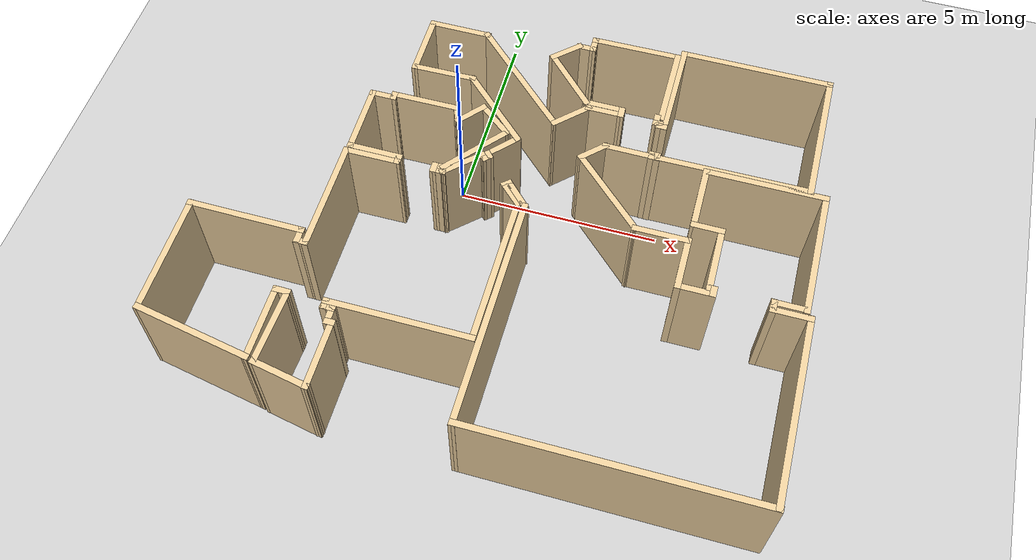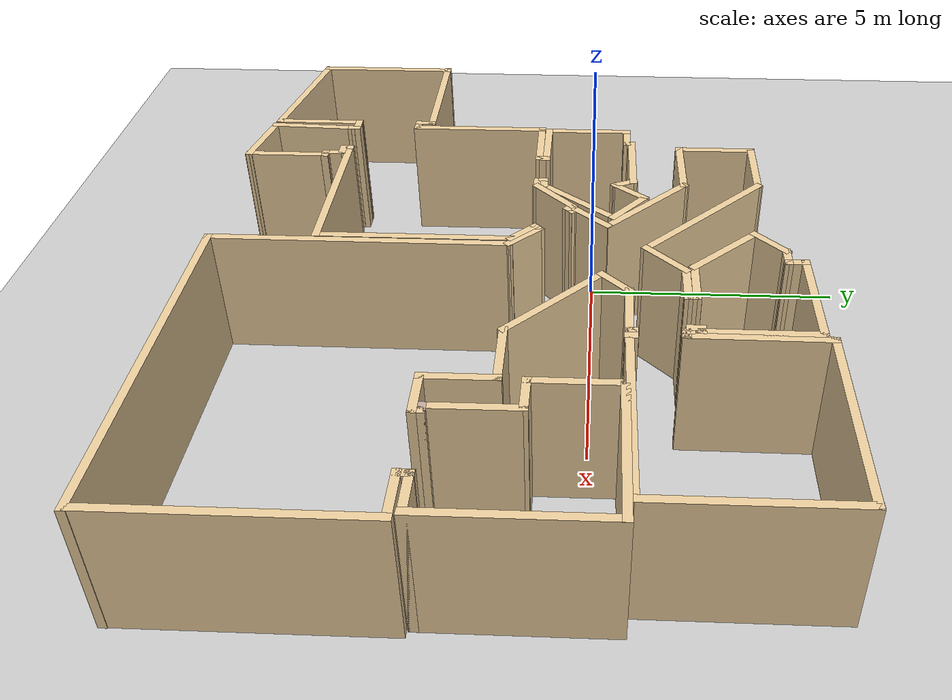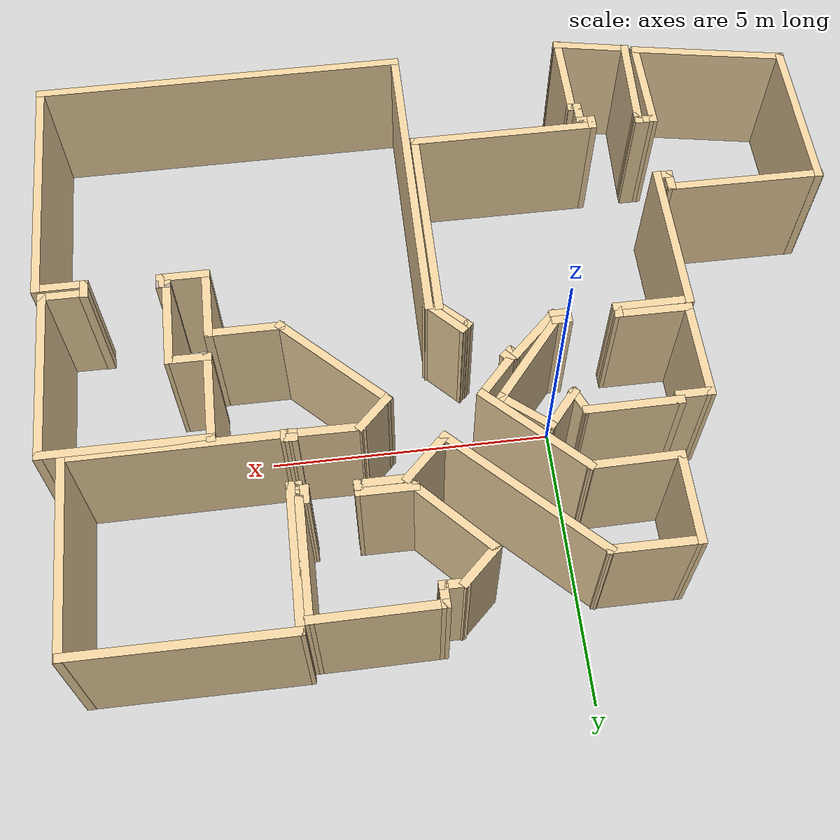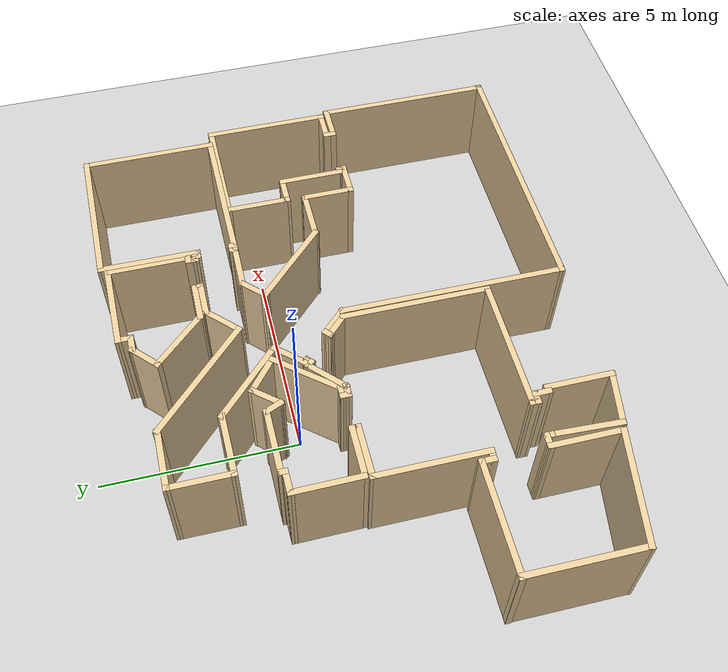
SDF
<sdf version="1.7">
 <world name="default">
  <model name="ground_plane">
   <static>1</static>
   <link name="link">
    <collision name="collision">
     <geometry><plane><normal>0 0 1</normal><size>100 100</size></plane></geometry>
     <surface>
      <contact><collide_bitmask>65535</collide_bitmask></contact>
      <friction><ode><mu>100</mu><mu2>50</mu2></ode></friction>
     </surface>
    </collision>
    <visual name="visual">
     <cast_shadows>0</cast_shadows>
     <geometry><plane><normal>0 0 1</normal><size>100 100</size></plane></geometry>
     <material>
      <script><uri>file://media/materials/scripts/gazebo.material</uri><name>Gazebo/Grey</name></script>
     </material>
    </visual>
   </link>
  </model>
  <model name="apartment">
   <pose>1.66788 -1.59386 0 0 -0 0</pose>
   <link name="Wall_100">
    <collision name="Wall_100_Collision">
     <geometry><box><size>2.95149 0.15 2.5</size></box></geometry>
     <pose>0 0 1.25 0 -0 0</pose>
    </collision>
    <visual name="Wall_100_Visual">
     <pose>0 0 1.25 0 -0 0</pose>
     <geometry><box><size>2.95149 0.15 2.5</size></box></geometry>
     <material>
      <script><uri>file://media/materials/scripts/gazebo.material</uri><name>Gazebo/Grey</name></script>
      <ambient>0.921569 0.807843 0.615686 1</ambient>
     </material>
     <meta><layer>0</layer></meta>
    </visual>
    <pose>5.57024 2.17108 0 0 -0 0</pose>
   </link>
   <link name="Wall_102">
    <collision name="Wall_102_Collision">
     <geometry><box><size>3.23176 0.15 2.5</size></box></geometry>
     <pose>0 0 1.25 0 -0 0</pose>
    </collision>
    <visual name="Wall_102_Visual">
     <pose>0 0 1.25 0 -0 0</pose>
     <geometry><box><size>3.23176 0.15 2.5</size></box></geometry>
     <material>
      <script><uri>file://media/materials/scripts/gazebo.material</uri><name>Gazebo/Grey</name></script>
      <ambient>0.921569 0.807843 0.615686 1</ambient>
     </material>
     <meta><layer>0</layer></meta>
    </visual>
    <pose>6.97321 0.632438 0 0 -0 1.5708</pose>
   </link>
   <link name="Wall_104">
    <collision name="Wall_104_Collision">
     <geometry><box><size>0.864692 0.15 2.5</size></box></geometry>
     <pose>0 0 1.25 0 -0 0</pose>
    </collision>
    <visual name="Wall_104_Visual">
     <pose>0 0 1.25 0 -0 0</pose>
     <geometry><box><size>0.864692 0.15 2.5</size></box></geometry>
     <material>
      <script><uri>file://media/materials/scripts/gazebo.material</uri><name>Gazebo/Grey</name></script>
      <ambient>0.921569 0.807843 0.615686 1</ambient>
     </material>
     <meta><layer>0</layer></meta>
    </visual>
    <pose>6.61587 -0.897002 0 0 -0 0</pose>
   </link>
   <link name="Wall_106">
    <collision name="Wall_106_Collision">
     <geometry><box><size>0.346141 0.15 2.5</size></box></geometry>
     <pose>0 0 1.25 0 -0 0</pose>
    </collision>
    <visual name="Wall_106_Visual">
     <pose>0 0 1.25 0 -0 0</pose>
     <geometry><box><size>0.346141 0.15 2.5</size></box></geometry>
     <material>
      <script><uri>file://media/materials/scripts/gazebo.material</uri><name>Gazebo/Grey</name></script>
      <ambient>0.921569 0.807843 0.615686 1</ambient>
     </material>
     <meta><layer>0</layer></meta>
    </visual>
    <pose>6.24608 -0.987123 0 0 -0 -1.5708</pose>
   </link>
   <link name="Wall_107">
    <collision name="Wall_107_Collision">
     <geometry><box><size>0.990144 0.15 2.5</size></box></geometry>
     <pose>0 0 1.25 0 -0 0</pose>
    </collision>
    <visual name="Wall_107_Visual">
     <pose>0 0 1.25 0 -0 0</pose>
     <geometry><box><size>0.990144 0.15 2.5</size></box></geometry>
     <material>
      <script><uri>file://media/materials/scripts/gazebo.material</uri><name>Gazebo/Grey</name></script>
      <ambient>0.921569 0.807843 0.615686 1</ambient>
     </material>
     <meta><layer>0</layer></meta>
    </visual>
    <pose>6.66615 -1.08519 0 0 -0 0</pose>
   </link>
   <link name="Wall_109">
    <collision name="Wall_109_Collision">
     <geometry><box><size>4.58478 0.15 2.5</size></box></geometry>
     <pose>0 0 1.25 0 -0 0</pose>
    </collision>
    <visual name="Wall_109_Visual">
     <pose>0 0 1.25 0 -0 0</pose>
     <geometry><box><size>4.58478 0.15 2.5</size></box></geometry>
     <material>
      <script><uri>file://media/materials/scripts/gazebo.material</uri><name>Gazebo/Grey</name></script>
      <ambient>0.921569 0.807843 0.615686 1</ambient>
     </material>
     <meta><layer>0</layer></meta>
    </visual>
    <pose>7.08665 -3.29873 0 0 -0 -1.5708</pose>
   </link>
   <link name="Wall_11">
    <collision name="Wall_11_Collision">
     <geometry><box><size>0.284286 0.15 2.5</size></box></geometry>
     <pose>0 0 1.25 0 -0 0</pose>
    </collision>
    <visual name="Wall_11_Visual">
     <pose>0 0 1.25 0 -0 0</pose>
     <geometry><box><size>0.284286 0.15 2.5</size></box></geometry>
     <material>
      <script><uri>file://media/materials/scripts/gazebo.material</uri><name>Gazebo/Grey</name></script>
      <ambient>0.921569 0.807843 0.615686 1</ambient>
     </material>
     <meta><layer>0</layer></meta>
    </visual>
    <pose>-3.18456 -3.61653 0 0 -0 -1.58337</pose>
   </link>
   <link name="Wall_12">
    <collision name="Wall_12_Collision">
     <geometry><box><size>0.354689 0.15 2.5</size></box></geometry>
     <pose>0 0 1.25 0 -0 0</pose>
    </collision>
    <visual name="Wall_12_Visual">
     <pose>0 0 1.25 0 -0 0</pose>
     <geometry><box><size>0.354689 0.15 2.5</size></box></geometry>
     <material>
      <script><uri>file://media/materials/scripts/gazebo.material</uri><name>Gazebo/Grey</name></script>
      <ambient>0.921569 0.807843 0.615686 1</ambient>
     </material>
     <meta><layer>0</layer></meta>
    </visual>
    <pose>-3.08306 -3.68462 0 0 -0 -0.013888</pose>
   </link>
   <link name="Wall_13">
    <collision name="Wall_13_Collision">
     <geometry><box><size>0.485442 0.15 2.5</size></box></geometry>
     <pose>0 0 1.25 0 -0 0</pose>
    </collision>
    <visual name="Wall_13_Visual">
     <pose>0 0 1.25 0 -0 0</pose>
     <geometry><box><size>0.485442 0.15 2.5</size></box></geometry>
     <material>
      <script><uri>file://media/materials/scripts/gazebo.material</uri><name>Gazebo/Grey</name></script>
      <ambient>0.921569 0.807843 0.615686 1</ambient>
     </material>
     <meta><layer>0</layer></meta>
    </visual>
    <pose>-2.97931 -3.85376 0 0 -0 -1.56232</pose>
   </link>
   <link name="Wall_14">
    <collision name="Wall_14_Collision">
     <geometry><box><size>0.260899 0.15 2.5</size></box></geometry>
     <pose>0 0 1.25 0 -0 0</pose>
    </collision>
    <visual name="Wall_14_Visual">
     <pose>0 0 1.25 0 -0 0</pose>
     <geometry><box><size>0.260899 0.15 2.5</size></box></geometry>
     <material>
      <script><uri>file://media/materials/scripts/gazebo.material</uri><name>Gazebo/Grey</name></script>
      <ambient>0.921569 0.807843 0.615686 1</ambient>
     </material>
     <meta><layer>0</layer></meta>
    </visual>
    <pose>-2.92246 -4.02147 0 0 -0 0</pose>
   </link>
   <link name="Wall_17">
    <collision name="Wall_17_Collision">
     <geometry><box><size>1.73664 0.15 2.5</size></box></geometry>
     <pose>0 0 1.25 0 -0 0</pose>
    </collision>
    <visual name="Wall_17_Visual">
     <pose>0 0 1.25 0 -0 0</pose>
     <geometry><box><size>1.73664 0.15 2.5</size></box></geometry>
     <material>
      <script><uri>file://media/materials/scripts/gazebo.material</uri><name>Gazebo/Grey</name></script>
      <ambient>0.921569 0.807843 0.615686 1</ambient>
     </material>
     <meta><layer>0</layer></meta>
    </visual>
    <pose>-2.86957 -4.8027 0 0 -0 -1.56807</pose>
   </link>
   <link name="Wall_18">
    <collision name="Wall_18_Collision">
     <geometry><box><size>1.45239 0.15 2.5</size></box></geometry>
     <pose>0 0 1.25 0 -0 0</pose>
    </collision>
    <visual name="Wall_18_Visual">
     <pose>0 0 1.25 0 -0 0</pose>
     <geometry><box><size>1.45239 0.15 2.5</size></box></geometry>
     <material>
      <script><uri>file://media/materials/scripts/gazebo.material</uri><name>Gazebo/Grey</name></script>
      <ambient>0.921569 0.807843 0.615686 1</ambient>
     </material>
     <meta><layer>0</layer></meta>
    </visual>
    <pose>-3.50725 -5.47497 0 0 -0 2.95461</pose>
   </link>
   <link name="Wall_19">
    <collision name="Wall_19_Collision">
     <geometry><box><size>1.8204 0.15 2.5</size></box></geometry>
     <pose>0 0 1.25 0 -0 0</pose>
    </collision>
    <visual name="Wall_19_Visual">
     <pose>0 0 1.25 0 -0 0</pose>
     <geometry><box><size>1.8204 0.15 2.5</size></box></geometry>
     <material>
      <script><uri>file://media/materials/scripts/gazebo.material</uri><name>Gazebo/Grey</name></script>
      <ambient>0.921569 0.807843 0.615686 1</ambient>
     </material>
     <meta><layer>0</layer></meta>
    </visual>
    <pose>-4.11035 -4.51952 0 0 -0 1.52678</pose>
   </link>
   <link name="Wall_2">
    <collision name="Wall_2_Collision">
     <geometry><box><size>6.92359 0.15 2.5</size></box></geometry>
     <pose>0 0 1.25 0 -0 0</pose>
    </collision>
    <visual name="Wall_2_Visual">
     <pose>0 0 1.25 0 -0 0</pose>
     <geometry><box><size>6.92359 0.15 2.5</size></box></geometry>
     <material>
      <script><uri>file://media/materials/scripts/gazebo.material</uri><name>Gazebo/Grey</name></script>
      <ambient>0.921569 0.807843 0.615686 1</ambient>
     </material>
     <meta><layer>0</layer></meta>
    </visual>
    <pose>3.71053 -5.53361 0 0 -0 -3.1399</pose>
   </link>
   <link name="Wall_20">
    <collision name="Wall_20_Collision">
     <geometry><box><size>0.266728 0.15 2.5</size></box></geometry>
     <pose>0 0 1.25 0 -0 0</pose>
    </collision>
    <visual name="Wall_20_Visual">
     <pose>0 0 1.25 0 -0 0</pose>
     <geometry><box><size>0.266728 0.15 2.5</size></box></geometry>
     <material>
      <script><uri>file://media/materials/scripts/gazebo.material</uri><name>Gazebo/Grey</name></script>
      <ambient>0.921569 0.807843 0.615686 1</ambient>
     </material>
     <meta><layer>0</layer></meta>
    </visual>
    <pose>-4.0736 -3.62677 0 0 -0 1.5708</pose>
   </link>
   <link name="Wall_21">
    <collision name="Wall_21_Collision">
     <geometry><box><size>0.418183 0.15 2.5</size></box></geometry>
     <pose>0 0 1.25 0 -0 0</pose>
    </collision>
    <visual name="Wall_21_Visual">
     <pose>0 0 1.25 0 -0 0</pose>
     <geometry><box><size>0.418183 0.15 2.5</size></box></geometry>
     <material>
      <script><uri>file://media/materials/scripts/gazebo.material</uri><name>Gazebo/Grey</name></script>
      <ambient>0.921569 0.807843 0.615686 1</ambient>
     </material>
     <meta><layer>0</layer></meta>
    </visual>
    <pose>-4.20763 -3.5684 0 0 -0 3.14159</pose>
   </link>
   <link name="Wall_22">
    <collision name="Wall_22_Collision">
     <geometry><box><size>1.87501 0.15 2.5</size></box></geometry>
     <pose>0 0 1.25 0 -0 0</pose>
    </collision>
    <visual name="Wall_22_Visual">
     <pose>0 0 1.25 0 -0 0</pose>
     <geometry><box><size>1.87501 0.15 2.5</size></box></geometry>
     <material>
      <script><uri>file://media/materials/scripts/gazebo.material</uri><name>Gazebo/Grey</name></script>
      <ambient>0.921569 0.807843 0.615686 1</ambient>
     </material>
     <meta><layer>0</layer></meta>
    </visual>
    <pose>-4.33949 -4.4309 0 0 -0 -1.56829</pose>
   </link>
   <link name="Wall_24">
    <collision name="Wall_24_Collision">
     <geometry><box><size>2.92937 0.15 2.5</size></box></geometry>
     <pose>0 0 1.25 0 -0 0</pose>
    </collision>
    <visual name="Wall_24_Visual">
     <pose>0 0 1.25 0 -0 0</pose>
     <geometry><box><size>2.92937 0.15 2.5</size></box></geometry>
     <material>
      <script><uri>file://media/materials/scripts/gazebo.material</uri><name>Gazebo/Grey</name></script>
      <ambient>0.921569 0.807843 0.615686 1</ambient>
     </material>
     <meta><layer>0</layer></meta>
    </visual>
    <pose>-5.71608 -5.04961 0 0 -0 2.96322</pose>
   </link>
   <link name="Wall_25">
    <collision name="Wall_25_Collision">
     <geometry><box><size>3.00362 0.15 2.5</size></box></geometry>
     <pose>0 0 1.25 0 -0 0</pose>
    </collision>
    <visual name="Wall_25_Visual">
     <pose>0 0 1.25 0 -0 0</pose>
     <geometry><box><size>3.00362 0.15 2.5</size></box></geometry>
     <material>
      <script><uri>file://media/materials/scripts/gazebo.material</uri><name>Gazebo/Grey</name></script>
      <ambient>0.921569 0.807843 0.615686 1</ambient>
     </material>
     <meta><layer>0</layer></meta>
    </visual>
    <pose>-7.08371 -3.37623 0 0 -0 1.5708</pose>
   </link>
   <link name="Wall_27">
    <collision name="Wall_27_Collision">
     <geometry><box><size>2.88666 0.15 2.5</size></box></geometry>
     <pose>0 0 1.25 0 -0 0</pose>
    </collision>
    <visual name="Wall_27_Visual">
     <pose>0 0 1.25 0 -0 0</pose>
     <geometry><box><size>2.88666 0.15 2.5</size></box></geometry>
     <material>
      <script><uri>file://media/materials/scripts/gazebo.material</uri><name>Gazebo/Grey</name></script>
      <ambient>0.921569 0.807843 0.615686 1</ambient>
     </material>
     <meta><layer>0</layer></meta>
    </visual>
    <pose>-5.72877 -1.95964 0 0 -0 -0.004739</pose>
   </link>
   <link name="Wall_28">
    <collision name="Wall_28_Collision">
     <geometry><box><size>0.431046 0.15 2.5</size></box></geometry>
     <pose>0 0 1.25 0 -0 0</pose>
    </collision>
    <visual name="Wall_28_Visual">
     <pose>0 0 1.25 0 -0 0</pose>
     <geometry><box><size>0.431046 0.15 2.5</size></box></geometry>
     <material>
      <script><uri>file://media/materials/scripts/gazebo.material</uri><name>Gazebo/Grey</name></script>
      <ambient>0.921569 0.807843 0.615686 1</ambient>
     </material>
     <meta><layer>0</layer></meta>
    </visual>
    <pose>-4.36045 -2.10663 0 0 -0 -1.5708</pose>
   </link>
   <link name="Wall_29">
    <collision name="Wall_29_Collision">
     <geometry><box><size>0.335901 0.15 2.5</size></box></geometry>
     <pose>0 0 1.25 0 -0 0</pose>
    </collision>
    <visual name="Wall_29_Visual">
     <pose>0 0 1.25 0 -0 0</pose>
     <geometry><box><size>0.335901 0.15 2.5</size></box></geometry>
     <material>
      <script><uri>file://media/materials/scripts/gazebo.material</uri><name>Gazebo/Grey</name></script>
      <ambient>0.921569 0.807843 0.615686 1</ambient>
     </material>
     <meta><layer>0</layer></meta>
    </visual>
    <pose>-4.2675 -2.24714 0 0 -0 0</pose>
   </link>
   <link name="Wall_3">
    <collision name="Wall_3_Collision">
     <geometry><box><size>5.75051 0.15 2.5</size></box></geometry>
     <pose>0 0 1.25 0 -0 0</pose>
    </collision>
    <visual name="Wall_3_Visual">
     <pose>0 0 1.25 0 -0 0</pose>
     <geometry><box><size>5.75051 0.15 2.5</size></box></geometry>
     <material>
      <script><uri>file://media/materials/scripts/gazebo.material</uri><name>Gazebo/Grey</name></script>
      <ambient>0.921569 0.807843 0.615686 1</ambient>
     </material>
     <meta><layer>0</layer></meta>
    </visual>
    <pose>0.329528 -2.73911 0 0 -0 1.56874</pose>
   </link>
   <link name="Wall_31">
    <collision name="Wall_31_Collision">
     <geometry><box><size>2.85962 0.15 2.5</size></box></geometry>
     <pose>0 0 1.25 0 -0 0</pose>
    </collision>
    <visual name="Wall_31_Visual">
     <pose>0 0 1.25 0 -0 0</pose>
     <geometry><box><size>2.85962 0.15 2.5</size></box></geometry>
     <material>
      <script><uri>file://media/materials/scripts/gazebo.material</uri><name>Gazebo/Grey</name></script>
      <ambient>0.921569 0.807843 0.615686 1</ambient>
     </material>
     <meta><layer>0</layer></meta>
    </visual>
    <pose>-4.15578 -0.899039 0 0 -0 1.57263</pose>
   </link>
   <link name="Wall_32">
    <collision name="Wall_32_Collision">
     <geometry><box><size>1.42278 0.15 2.5</size></box></geometry>
     <pose>0 0 1.25 0 -0 0</pose>
    </collision>
    <visual name="Wall_32_Visual">
     <pose>0 0 1.25 0 -0 0</pose>
     <geometry><box><size>1.42278 0.15 2.5</size></box></geometry>
     <material>
      <script><uri>file://media/materials/scripts/gazebo.material</uri><name>Gazebo/Grey</name></script>
      <ambient>0.921569 0.807843 0.615686 1</ambient>
     </material>
     <meta><layer>0</layer></meta>
    </visual>
    <pose>-3.52188 0.458253 0 0 -0 0.003906</pose>
   </link>
   <link name="Wall_33">
    <collision name="Wall_33_Collision">
     <geometry><box><size>0.294181 0.15 2.5</size></box></geometry>
     <pose>0 0 1.25 0 -0 0</pose>
    </collision>
    <visual name="Wall_33_Visual">
     <pose>0 0 1.25 0 -0 0</pose>
     <geometry><box><size>0.294181 0.15 2.5</size></box></geometry>
     <material>
      <script><uri>file://media/materials/scripts/gazebo.material</uri><name>Gazebo/Grey</name></script>
      <ambient>0.921569 0.807843 0.615686 1</ambient>
     </material>
     <meta><layer>0</layer></meta>
    </visual>
    <pose>-2.88549 0.53283 0 0 -0 1.5708</pose>
   </link>
   <link name="Wall_34">
    <collision name="Wall_34_Collision">
     <geometry><box><size>1.37315 0.15 2.5</size></box></geometry>
     <pose>0 0 1.25 0 -0 0</pose>
    </collision>
    <visual name="Wall_34_Visual">
     <pose>0 0 1.25 0 -0 0</pose>
     <geometry><box><size>1.37315 0.15 2.5</size></box></geometry>
     <material>
      <script><uri>file://media/materials/scripts/gazebo.material</uri><name>Gazebo/Grey</name></script>
      <ambient>0.921569 0.807843 0.615686 1</ambient>
     </material>
     <meta><layer>0</layer></meta>
    </visual>
    <pose>-3.49702 0.607406 0 0 -0 3.13753</pose>
   </link>
   <link name="Wall_36">
    <collision name="Wall_36_Collision">
     <geometry><box><size>1.80158 0.15 2.5</size></box></geometry>
     <pose>0 0 1.25 0 -0 0</pose>
    </collision>
    <visual name="Wall_36_Visual">
     <pose>0 0 1.25 0 -0 0</pose>
     <geometry><box><size>1.80158 0.15 2.5</size></box></geometry>
     <material>
      <script><uri>file://media/materials/scripts/gazebo.material</uri><name>Gazebo/Grey</name></script>
      <ambient>0.921569 0.807843 0.615686 1</ambient>
     </material>
     <meta><layer>0</layer></meta>
    </visual>
    <pose>-4.11695 1.45041 0 0 -0 1.58127</pose>
   </link>
   <link name="Wall_37">
    <collision name="Wall_37_Collision">
     <geometry><box><size>0.681781 0.15 2.5</size></box></geometry>
     <pose>0 0 1.25 0 -0 0</pose>
    </collision>
    <visual name="Wall_37_Visual">
     <pose>0 0 1.25 0 -0 0</pose>
     <geometry><box><size>0.681781 0.15 2.5</size></box></geometry>
     <material>
      <script><uri>file://media/materials/scripts/gazebo.material</uri><name>Gazebo/Grey</name></script>
      <ambient>0.921569 0.807843 0.615686 1</ambient>
     </material>
     <meta><layer>0</layer></meta>
    </visual>
    <pose>-3.85972 2.27831 0 0 -0 0.00813</pose>
   </link>
   <link name="Wall_38">
    <collision name="Wall_38_Collision">
     <geometry><box><size>0.245504 0.15 2.5</size></box></geometry>
     <pose>0 0 1.25 0 -0 0</pose>
    </collision>
    <visual name="Wall_38_Visual">
     <pose>0 0 1.25 0 -0 0</pose>
     <geometry><box><size>0.245504 0.15 2.5</size></box></geometry>
     <material>
      <script><uri>file://media/materials/scripts/gazebo.material</uri><name>Gazebo/Grey</name></script>
      <ambient>0.921569 0.807843 0.615686 1</ambient>
     </material>
     <meta><layer>0</layer></meta>
    </visual>
    <pose>-3.59383 2.32803 0 0 -0 1.5708</pose>
   </link>
   <link name="Wall_39">
    <collision name="Wall_39_Collision">
     <geometry><box><size>1.72802 0.15 2.5</size></box></geometry>
     <pose>0 0 1.25 0 -0 0</pose>
    </collision>
    <visual name="Wall_39_Visual">
     <pose>0 0 1.25 0 -0 0</pose>
     <geometry><box><size>1.72802 0.15 2.5</size></box></geometry>
     <material>
      <script><uri>file://media/materials/scripts/gazebo.material</uri><name>Gazebo/Grey</name></script>
      <ambient>0.921569 0.807843 0.615686 1</ambient>
     </material>
     <meta><layer>0</layer></meta>
    </visual>
    <pose>-2.80484 2.37991 0 0 -0 0.005479</pose>
   </link>
   <link name="Wall_4">
    <collision name="Wall_4_Collision">
     <geometry><box><size>0.890032 0.15 2.5</size></box></geometry>
     <pose>0 0 1.25 0 -0 0</pose>
    </collision>
    <visual name="Wall_4_Visual">
     <pose>0 0 1.25 0 -0 0</pose>
     <geometry><box><size>0.890032 0.15 2.5</size></box></geometry>
     <material>
      <script><uri>file://media/materials/scripts/gazebo.material</uri><name>Gazebo/Grey</name></script>
      <ambient>0.921569 0.807843 0.615686 1</ambient>
     </material>
     <meta><layer>0</layer></meta>
    </visual>
    <pose>0.076528 0.32564 0 0 -0 2.34521</pose>
   </link>
   <link name="Wall_40">
    <collision name="Wall_40_Collision">
     <geometry><box><size>0.537169 0.15 2.5</size></box></geometry>
     <pose>0 0 1.25 0 -0 0</pose>
    </collision>
    <visual name="Wall_40_Visual">
     <pose>0 0 1.25 0 -0 0</pose>
     <geometry><box><size>0.537169 0.15 2.5</size></box></geometry>
     <material>
      <script><uri>file://media/materials/scripts/gazebo.material</uri><name>Gazebo/Grey</name></script>
      <ambient>0.921569 0.807843 0.615686 1</ambient>
     </material>
     <meta><layer>0</layer></meta>
    </visual>
    <pose>-1.93802 2.20698 0 0 -0 -1.15711</pose>
   </link>
   <link name="Wall_41">
    <collision name="Wall_41_Collision">
     <geometry><box><size>0.882932 0.15 2.5</size></box></geometry>
     <pose>0 0 1.25 0 -0 0</pose>
    </collision>
    <visual name="Wall_41_Visual">
     <pose>0 0 1.25 0 -0 0</pose>
     <geometry><box><size>0.882932 0.15 2.5</size></box></geometry>
     <material>
      <script><uri>file://media/materials/scripts/gazebo.material</uri><name>Gazebo/Grey</name></script>
      <ambient>0.921569 0.807843 0.615686 1</ambient>
     </material>
     <meta><layer>0</layer></meta>
    </visual>
    <pose>-1.62458 2.31074 0 0 -0 0.873039</pose>
   </link>
   <link name="Wall_42">
    <collision name="Wall_42_Collision">
     <geometry><box><size>1.10544 0.15 2.5</size></box></geometry>
     <pose>0 0 1.25 0 -0 0</pose>
    </collision>
    <visual name="Wall_42_Visual">
     <pose>0 0 1.25 0 -0 0</pose>
     <geometry><box><size>1.10544 0.15 2.5</size></box></geometry>
     <material>
      <script><uri>file://media/materials/scripts/gazebo.material</uri><name>Gazebo/Grey</name></script>
      <ambient>0.921569 0.807843 0.615686 1</ambient>
     </material>
     <meta><layer>0</layer></meta>
    </visual>
    <pose>-1.01932 2.28912 0 0 -0 -0.686048</pose>
   </link>
   <link name="Wall_43">
    <collision name="Wall_43_Collision">
     <geometry><box><size>1.94016 0.15 2.5</size></box></geometry>
     <pose>0 0 1.25 0 -0 0</pose>
    </collision>
    <visual name="Wall_43_Visual">
     <pose>0 0 1.25 0 -0 0</pose>
     <geometry><box><size>1.94016 0.15 2.5</size></box></geometry>
     <material>
      <script><uri>file://media/materials/scripts/gazebo.material</uri><name>Gazebo/Grey</name></script>
      <ambient>0.921569 0.807843 0.615686 1</ambient>
     </material>
     <meta><layer>0</layer></meta>
    </visual>
    <pose>-1.22036 1.29693 0 0 -0 -2.26213</pose>
   </link>
   <link name="Wall_44">
    <collision name="Wall_44_Collision">
     <geometry><box><size>0.361885 0.15 2.5</size></box></geometry>
     <pose>0 0 1.25 0 -0 0</pose>
    </collision>
    <visual name="Wall_44_Visual">
     <pose>0 0 1.25 0 -0 0</pose>
     <geometry><box><size>0.361885 0.15 2.5</size></box></geometry>
     <material>
      <script><uri>file://media/materials/scripts/gazebo.material</uri><name>Gazebo/Grey</name></script>
      <ambient>0.921569 0.807843 0.615686 1</ambient>
     </material>
     <meta><layer>0</layer></meta>
    </visual>
    <pose>-1.89695 0.605206 0 0 -0 -3.12119</pose>
   </link>
   <link name="Wall_45">
    <collision name="Wall_45_Collision">
     <geometry><box><size>0.27977 0.15 2.5</size></box></geometry>
     <pose>0 0 1.25 0 -0 0</pose>
    </collision>
    <visual name="Wall_45_Visual">
     <pose>0 0 1.25 0 -0 0</pose>
     <geometry><box><size>0.27977 0.15 2.5</size></box></geometry>
     <material>
      <script><uri>file://media/materials/scripts/gazebo.material</uri><name>Gazebo/Grey</name></script>
      <ambient>0.921569 0.807843 0.615686 1</ambient>
     </material>
     <meta><layer>0</layer></meta>
    </visual>
    <pose>-2.00287 0.538195 0 0 -0 -1.5708</pose>
   </link>
   <link name="Wall_46">
    <collision name="Wall_46_Collision">
     <geometry><box><size>0.383497 0.15 2.5</size></box></geometry>
     <pose>0 0 1.25 0 -0 0</pose>
    </collision>
    <visual name="Wall_46_Visual">
     <pose>0 0 1.25 0 -0 0</pose>
     <geometry><box><size>0.383497 0.15 2.5</size></box></geometry>
     <material>
      <script><uri>file://media/materials/scripts/gazebo.material</uri><name>Gazebo/Grey</name></script>
      <ambient>0.921569 0.807843 0.615686 1</ambient>
     </material>
     <meta><layer>0</layer></meta>
    </visual>
    <pose>-1.88614 0.475507 0 0 -0 0.018516</pose>
   </link>
   <link name="Wall_47">
    <collision name="Wall_47_Collision">
     <geometry><box><size>1.19266 0.15 2.5</size></box></geometry>
     <pose>0 0 1.25 0 -0 0</pose>
    </collision>
    <visual name="Wall_47_Visual">
     <pose>0 0 1.25 0 -0 0</pose>
     <geometry><box><size>1.19266 0.15 2.5</size></box></geometry>
     <material>
      <script><uri>file://media/materials/scripts/gazebo.material</uri><name>Gazebo/Grey</name></script>
      <ambient>0.921569 0.807843 0.615686 1</ambient>
     </material>
     <meta><layer>0</layer></meta>
    </visual>
    <pose>-1.39329 0.838663 0 0 -0 0.764873</pose>
   </link>
   <link name="Wall_48">
    <collision name="Wall_48_Collision">
     <geometry><box><size>0.272281 0.15 2.5</size></box></geometry>
     <pose>0 0 1.25 0 -0 0</pose>
    </collision>
    <visual name="Wall_48_Visual">
     <pose>0 0 1.25 0 -0 0</pose>
     <geometry><box><size>0.272281 0.15 2.5</size></box></geometry>
     <material>
      <script><uri>file://media/materials/scripts/gazebo.material</uri><name>Gazebo/Grey</name></script>
      <ambient>0.921569 0.807843 0.615686 1</ambient>
     </material>
     <meta><layer>0</layer></meta>
    </visual>
    <pose>-0.973929 1.15642 0 0 -0 -0.785398</pose>
   </link>
   <link name="Wall_49">
    <collision name="Wall_49_Collision">
     <geometry><box><size>0.272433 0.15 2.5</size></box></geometry>
     <pose>0 0 1.25 0 -0 0</pose>
    </collision>
    <visual name="Wall_49_Visual">
     <pose>0 0 1.25 0 -0 0</pose>
     <geometry><box><size>0.272433 0.15 2.5</size></box></geometry>
     <material>
      <script><uri>file://media/materials/scripts/gazebo.material</uri><name>Gazebo/Grey</name></script>
      <ambient>0.921569 0.807843 0.615686 1</ambient>
     </material>
     <meta><layer>0</layer></meta>
    </visual>
    <pose>-0.885302 1.15426 0 0 -0 0.73544</pose>
   </link>
   <link name="Wall_5">
    <collision name="Wall_5_Collision">
     <geometry><box><size>0.272247 0.15 2.5</size></box></geometry>
     <pose>0 0 1.25 0 -0 0</pose>
    </collision>
    <visual name="Wall_5_Visual">
     <pose>0 0 1.25 0 -0 0</pose>
     <geometry><box><size>0.272247 0.15 2.5</size></box></geometry>
     <material>
      <script><uri>file://media/materials/scripts/gazebo.material</uri><name>Gazebo/Grey</name></script>
      <ambient>0.921569 0.807843 0.615686 1</ambient>
     </material>
     <meta><layer>0</layer></meta>
    </visual>
    <pose>-0.228222 0.54989 0 0 -0 -2.42276</pose>
   </link>
   <link name="Wall_50">
    <collision name="Wall_50_Collision">
     <geometry><box><size>0.248015 0.15 2.5</size></box></geometry>
     <pose>0 0 1.25 0 -0 0</pose>
    </collision>
    <visual name="Wall_50_Visual">
     <pose>0 0 1.25 0 -0 0</pose>
     <geometry><box><size>0.248015 0.15 2.5</size></box></geometry>
     <material>
      <script><uri>file://media/materials/scripts/gazebo.material</uri><name>Gazebo/Grey</name></script>
      <ambient>0.921569 0.807843 0.615686 1</ambient>
     </material>
     <meta><layer>0</layer></meta>
    </visual>
    <pose>-0.872332 1.23208 0 0 -0 2.29378</pose>
   </link>
   <link name="Wall_51">
    <collision name="Wall_51_Collision">
     <geometry><box><size>0.963994 0.15 2.5</size></box></geometry>
     <pose>0 0 1.25 0 -0 0</pose>
    </collision>
    <visual name="Wall_51_Visual">
     <pose>0 0 1.25 0 -0 0</pose>
     <geometry><box><size>0.963994 0.15 2.5</size></box></geometry>
     <material>
      <script><uri>file://media/materials/scripts/gazebo.material</uri><name>Gazebo/Grey</name></script>
      <ambient>0.921569 0.807843 0.615686 1</ambient>
     </material>
     <meta><layer>0</layer></meta>
    </visual>
    <pose>-0.630228 1.5693 0 0 -0 0.83048</pose>
   </link>
   <link name="Wall_53">
    <collision name="Wall_53_Collision">
     <geometry><box><size>2.31242 0.15 2.5</size></box></geometry>
     <pose>0 0 1.25 0 -0 0</pose>
    </collision>
    <visual name="Wall_53_Visual">
     <pose>0 0 1.25 0 -0 0</pose>
     <geometry><box><size>2.31242 0.15 2.5</size></box></geometry>
     <material>
      <script><uri>file://media/materials/scripts/gazebo.material</uri><name>Gazebo/Grey</name></script>
      <ambient>0.921569 0.807843 0.615686 1</ambient>
     </material>
     <meta><layer>0</layer></meta>
    </visual>
    <pose>-1.12607 2.63616 0 0 -0 2.37408</pose>
   </link>
   <link name="Wall_54">
    <collision name="Wall_54_Collision">
     <geometry><box><size>1.63669 0.15 2.5</size></box></geometry>
     <pose>0 0 1.25 0 -0 0</pose>
    </collision>
    <visual name="Wall_54_Visual">
     <pose>0 0 1.25 0 -0 0</pose>
     <geometry><box><size>1.63669 0.15 2.5</size></box></geometry>
     <material>
      <script><uri>file://media/materials/scripts/gazebo.material</uri><name>Gazebo/Grey</name></script>
      <ambient>0.921569 0.807843 0.615686 1</ambient>
     </material>
     <meta><layer>0</layer></meta>
    </visual>
    <pose>-2.64743 3.37695 0 0 -0 -3.12822</pose>
   </link>
   <link name="Wall_55">
    <collision name="Wall_55_Collision">
     <geometry><box><size>1.64651 0.15 2.5</size></box></geometry>
     <pose>0 0 1.25 0 -0 0</pose>
    </collision>
    <visual name="Wall_55_Visual">
     <pose>0 0 1.25 0 -0 0</pose>
     <geometry><box><size>1.64651 0.15 2.5</size></box></geometry>
     <material>
      <script><uri>file://media/materials/scripts/gazebo.material</uri><name>Gazebo/Grey</name></script>
      <ambient>0.921569 0.807843 0.615686 1</ambient>
     </material>
     <meta><layer>0</layer></meta>
    </visual>
    <pose>-3.39319 4.11526 0 0 -0 1.57412</pose>
   </link>
   <link name="Wall_56">
    <collision name="Wall_56_Collision">
     <geometry><box><size>1.59679 0.15 2.5</size></box></geometry>
     <pose>0 0 1.25 0 -0 0</pose>
    </collision>
    <visual name="Wall_56_Visual">
     <pose>0 0 1.25 0 -0 0</pose>
     <geometry><box><size>1.59679 0.15 2.5</size></box></geometry>
     <material>
      <script><uri>file://media/materials/scripts/gazebo.material</uri><name>Gazebo/Grey</name></script>
      <ambient>0.921569 0.807843 0.615686 1</ambient>
     </material>
     <meta><layer>0</layer></meta>
    </visual>
    <pose>-2.67229 4.86102 0 0 -0 -0.003436</pose>
   </link>
   <link name="Wall_57">
    <collision name="Wall_57_Collision">
     <geometry><box><size>3.39866 0.15 2.5</size></box></geometry>
     <pose>0 0 1.25 0 -0 0</pose>
    </collision>
    <visual name="Wall_57_Visual">
     <pose>0 0 1.25 0 -0 0</pose>
     <geometry><box><size>3.39866 0.15 2.5</size></box></geometry>
     <material>
      <script><uri>file://media/materials/scripts/gazebo.material</uri><name>Gazebo/Grey</name></script>
      <ambient>0.921569 0.807843 0.615686 1</ambient>
     </material>
     <meta><layer>0</layer></meta>
    </visual>
    <pose>-0.785501 3.72497 0 0 -0 -0.772412</pose>
   </link>
   <link name="Wall_58">
    <collision name="Wall_58_Collision">
     <geometry><box><size>1.11679 0.15 2.5</size></box></geometry>
     <pose>0 0 1.25 0 -0 0</pose>
    </collision>
    <visual name="Wall_58_Visual">
     <pose>0 0 1.25 0 -0 0</pose>
     <geometry><box><size>1.11679 0.15 2.5</size></box></geometry>
     <material>
      <script><uri>file://media/materials/scripts/gazebo.material</uri><name>Gazebo/Grey</name></script>
      <ambient>0.921569 0.807843 0.615686 1</ambient>
     </material>
     <meta><layer>0</layer></meta>
    </visual>
    <pose>0.720944 2.93197 0 0 -0 0.781762</pose>
   </link>
   <link name="Wall_59">
    <collision name="Wall_59_Collision">
     <geometry><box><size>0.950593 0.15 2.5</size></box></geometry>
     <pose>0 0 1.25 0 -0 0</pose>
    </collision>
    <visual name="Wall_59_Visual">
     <pose>0 0 1.25 0 -0 0</pose>
     <geometry><box><size>0.950593 0.15 2.5</size></box></geometry>
     <material>
      <script><uri>file://media/materials/scripts/gazebo.material</uri><name>Gazebo/Grey</name></script>
      <ambient>0.921569 0.807843 0.615686 1</ambient>
     </material>
     <meta><layer>0</layer></meta>
    </visual>
    <pose>1.46422 3.27254 0 0 -0 0</pose>
   </link>
   <link name="Wall_6">
    <collision name="Wall_6_Collision">
     <geometry><box><size>0.759934 0.15 2.5</size></box></geometry>
     <pose>0 0 1.25 0 -0 0</pose>
    </collision>
    <visual name="Wall_6_Visual">
     <pose>0 0 1.25 0 -0 0</pose>
     <geometry><box><size>0.759934 0.15 2.5</size></box></geometry>
     <material>
      <script><uri>file://media/materials/scripts/gazebo.material</uri><name>Gazebo/Grey</name></script>
      <ambient>0.921569 0.807843 0.615686 1</ambient>
     </material>
     <meta><layer>0</layer></meta>
    </visual>
    <pose>-0.055722 0.29689 0 0 -0 -0.772066</pose>
   </link>
   <link name="Wall_60">
    <collision name="Wall_60_Collision">
     <geometry><box><size>0.299153 0.15 2.5</size></box></geometry>
     <pose>0 0 1.25 0 -0 0</pose>
    </collision>
    <visual name="Wall_60_Visual">
     <pose>0 0 1.25 0 -0 0</pose>
     <geometry><box><size>0.299153 0.15 2.5</size></box></geometry>
     <material>
      <script><uri>file://media/materials/scripts/gazebo.material</uri><name>Gazebo/Grey</name></script>
      <ambient>0.921569 0.807843 0.615686 1</ambient>
     </material>
     <meta><layer>0</layer></meta>
    </visual>
    <pose>1.86197 3.34712 0 0 -0 1.60412</pose>
   </link>
   <link name="Wall_61">
    <collision name="Wall_61_Collision">
     <geometry><box><size>1.0499 0.15 2.5</size></box></geometry>
     <pose>0 0 1.25 0 -0 0</pose>
    </collision>
    <visual name="Wall_61_Visual">
     <pose>0 0 1.25 0 -0 0</pose>
     <geometry><box><size>1.0499 0.15 2.5</size></box></geometry>
     <material>
      <script><uri>file://media/materials/scripts/gazebo.material</uri><name>Gazebo/Grey</name></script>
      <ambient>0.921569 0.807843 0.615686 1</ambient>
     </material>
     <meta><layer>0</layer></meta>
    </visual>
    <pose>1.40953 3.42418 0 0 -0 3.13607</pose>
   </link>
   <link name="Wall_62">
    <collision name="Wall_62_Collision">
     <geometry><box><size>1.78177 0.15 2.5</size></box></geometry>
     <pose>0 0 1.25 0 -0 0</pose>
    </collision>
    <visual name="Wall_62_Visual">
     <pose>0 0 1.25 0 -0 0</pose>
     <geometry><box><size>1.78177 0.15 2.5</size></box></geometry>
     <material>
      <script><uri>file://media/materials/scripts/gazebo.material</uri><name>Gazebo/Grey</name></script>
      <ambient>0.921569 0.807843 0.615686 1</ambient>
     </material>
     <meta><layer>0</layer></meta>
    </visual>
    <pose>0.39778 4.01831 0 0 -0 2.33034</pose>
   </link>
   <link name="Wall_64">
    <collision name="Wall_64_Collision">
     <geometry><box><size>0.902628 0.15 2.5</size></box></geometry>
     <pose>0 0 1.25 0 -0 0</pose>
    </collision>
    <visual name="Wall_64_Visual">
     <pose>0 0 1.25 0 -0 0</pose>
     <geometry><box><size>0.902628 0.15 2.5</size></box></geometry>
     <material>
      <script><uri>file://media/materials/scripts/gazebo.material</uri><name>Gazebo/Grey</name></script>
      <ambient>0.921569 0.807843 0.615686 1</ambient>
     </material>
     <meta><layer>0</layer></meta>
    </visual>
    <pose>0.104445 4.87345 0 0 -0 0.757368</pose>
   </link>
   <link name="Wall_65">
    <collision name="Wall_65_Collision">
     <geometry><box><size>0.498024 0.15 2.5</size></box></geometry>
     <pose>0 0 1.25 0 -0 0</pose>
    </collision>
    <visual name="Wall_65_Visual">
     <pose>0 0 1.25 0 -0 0</pose>
     <geometry><box><size>0.498024 0.15 2.5</size></box></geometry>
     <material>
      <script><uri>file://media/materials/scripts/gazebo.material</uri><name>Gazebo/Grey</name></script>
      <ambient>0.921569 0.807843 0.615686 1</ambient>
     </material>
     <meta><layer>0</layer></meta>
    </visual>
    <pose>0.551904 5.13198 0 0 -0 0</pose>
   </link>
   <link name="Wall_66">
    <collision name="Wall_66_Collision">
     <geometry><box><size>0.453319 0.15 2.5</size></box></geometry>
     <pose>0 0 1.25 0 -0 0</pose>
    </collision>
    <visual name="Wall_66_Visual">
     <pose>0 0 1.25 0 -0 0</pose>
     <geometry><box><size>0.453319 0.15 2.5</size></box></geometry>
     <material>
      <script><uri>file://media/materials/scripts/gazebo.material</uri><name>Gazebo/Grey</name></script>
      <ambient>0.921569 0.807843 0.615686 1</ambient>
     </material>
     <meta><layer>0</layer></meta>
    </visual>
    <pose>0.72343 5.28362 0 0 -0 1.58719</pose>
   </link>
   <link name="Wall_67">
    <collision name="Wall_67_Collision">
     <geometry><box><size>2.25311 0.15 2.5</size></box></geometry>
     <pose>0 0 1.25 0 -0 0</pose>
    </collision>
    <visual name="Wall_67_Visual">
     <pose>0 0 1.25 0 -0 0</pose>
     <geometry><box><size>2.25311 0.15 2.5</size></box></geometry>
     <material>
      <script><uri>file://media/materials/scripts/gazebo.material</uri><name>Gazebo/Grey</name></script>
      <ambient>0.921569 0.807843 0.615686 1</ambient>
     </material>
     <meta><layer>0</layer></meta>
    </visual>
    <pose>1.77247 5.44272 0 0 -0 0.007092</pose>
   </link>
   <link name="Wall_68">
    <collision name="Wall_68_Collision">
     <geometry><box><size>2.15362 0.15 2.5</size></box></geometry>
     <pose>0 0 1.25 0 -0 0</pose>
    </collision>
    <visual name="Wall_68_Visual">
     <pose>0 0 1.25 0 -0 0</pose>
     <geometry><box><size>2.15362 0.15 2.5</size></box></geometry>
     <material>
      <script><uri>file://media/materials/scripts/gazebo.material</uri><name>Gazebo/Grey</name></script>
      <ambient>0.921569 0.807843 0.615686 1</ambient>
     </material>
     <meta><layer>0</layer></meta>
    </visual>
    <pose>2.824 4.44836 0 0 -0 -1.5708</pose>
   </link>
   <link name="Wall_69">
    <collision name="Wall_69_Collision">
     <geometry><box><size>0.23452 0.15 2.5</size></box></geometry>
     <pose>0 0 1.25 0 -0 0</pose>
    </collision>
    <visual name="Wall_69_Visual">
     <pose>0 0 1.25 0 -0 0</pose>
     <geometry><box><size>0.23452 0.15 2.5</size></box></geometry>
     <material>
      <script><uri>file://media/materials/scripts/gazebo.material</uri><name>Gazebo/Grey</name></script>
      <ambient>0.921569 0.807843 0.615686 1</ambient>
     </material>
     <meta><layer>0</layer></meta>
    </visual>
    <pose>2.78174 3.44655 0 0 -0 3.14159</pose>
   </link>
   <link name="Wall_7">
    <collision name="Wall_7_Collision">
     <geometry><box><size>3.784 0.15 2.5</size></box></geometry>
     <pose>0 0 1.25 0 -0 0</pose>
    </collision>
    <visual name="Wall_7_Visual">
     <pose>0 0 1.25 0 -0 0</pose>
     <geometry><box><size>3.784 0.15 2.5</size></box></geometry>
     <material>
      <script><uri>file://media/materials/scripts/gazebo.material</uri><name>Gazebo/Grey</name></script>
      <ambient>0.921569 0.807843 0.615686 1</ambient>
     </material>
     <meta><layer>0</layer></meta>
    </visual>
    <pose>0.162778 -1.73286 0 0 -0 -1.5708</pose>
   </link>
   <link name="Wall_71">
    <collision name="Wall_71_Collision">
     <geometry><box><size>0.334904 0.15 2.5</size></box></geometry>
     <pose>0 0 1.25 0 -0 0</pose>
    </collision>
    <visual name="Wall_71_Visual">
     <pose>0 0 1.25 0 -0 0</pose>
     <geometry><box><size>0.334904 0.15 2.5</size></box></geometry>
     <material>
      <script><uri>file://media/materials/scripts/gazebo.material</uri><name>Gazebo/Grey</name></script>
      <ambient>0.921569 0.807843 0.615686 1</ambient>
     </material>
     <meta><layer>0</layer></meta>
    </visual>
    <pose>2.72936 3.35367 0 0 -0 -1.58814</pose>
   </link>
   <link name="Wall_72">
    <collision name="Wall_72_Collision">
     <geometry><box><size>0.251572 0.15 2.5</size></box></geometry>
     <pose>0 0 1.25 0 -0 0</pose>
    </collision>
    <visual name="Wall_72_Visual">
     <pose>0 0 1.25 0 -0 0</pose>
     <geometry><box><size>0.251572 0.15 2.5</size></box></geometry>
     <material>
      <script><uri>file://media/materials/scripts/gazebo.material</uri><name>Gazebo/Grey</name></script>
      <ambient>0.921569 0.807843 0.615686 1</ambient>
     </material>
     <meta><layer>0</layer></meta>
    </visual>
    <pose>2.77852 3.26123 0 0 -0 0</pose>
   </link>
   <link name="Wall_73">
    <collision name="Wall_73_Collision">
     <geometry><box><size>0.222676 0.15 2.5</size></box></geometry>
     <pose>0 0 1.25 0 -0 0</pose>
    </collision>
    <visual name="Wall_73_Visual">
     <pose>0 0 1.25 0 -0 0</pose>
     <geometry><box><size>0.222676 0.15 2.5</size></box></geometry>
     <material>
      <script><uri>file://media/materials/scripts/gazebo.material</uri><name>Gazebo/Grey</name></script>
      <ambient>0.921569 0.807843 0.615686 1</ambient>
     </material>
     <meta><layer>0</layer></meta>
    </visual>
    <pose>2.82928 3.2249 0 0 -0 -1.5708</pose>
   </link>
   <link name="Wall_74">
    <collision name="Wall_74_Collision">
     <geometry><box><size>0.264345 0.15 2.5</size></box></geometry>
     <pose>0 0 1.25 0 -0 0</pose>
    </collision>
    <visual name="Wall_74_Visual">
     <pose>0 0 1.25 0 -0 0</pose>
     <geometry><box><size>0.264345 0.15 2.5</size></box></geometry>
     <material>
      <script><uri>file://media/materials/scripts/gazebo.material</uri><name>Gazebo/Grey</name></script>
      <ambient>0.921569 0.807843 0.615686 1</ambient>
     </material>
     <meta><layer>0</layer></meta>
    </visual>
    <pose>2.88645 3.18857 0 0 -0 0</pose>
   </link>
   <link name="Wall_76">
    <collision name="Wall_76_Collision">
     <geometry><box><size>2.57539 0.15 2.5</size></box></geometry>
     <pose>0 0 1.25 0 -0 0</pose>
    </collision>
    <visual name="Wall_76_Visual">
     <pose>0 0 1.25 0 -0 0</pose>
     <geometry><box><size>2.57539 0.15 2.5</size></box></geometry>
     <material>
      <script><uri>file://media/materials/scripts/gazebo.material</uri><name>Gazebo/Grey</name></script>
      <ambient>0.921569 0.807843 0.615686 1</ambient>
     </material>
     <meta><layer>0</layer></meta>
    </visual>
    <pose>2.95481 4.39558 0 0 -0 1.56545</pose>
   </link>
   <link name="Wall_77">
    <collision name="Wall_77_Collision">
     <geometry><box><size>3.79022 0.15 2.5</size></box></geometry>
     <pose>0 0 1.25 0 -0 0</pose>
    </collision>
    <visual name="Wall_77_Visual">
     <pose>0 0 1.25 0 -0 0</pose>
     <geometry><box><size>3.79022 0.15 2.5</size></box></geometry>
     <material>
      <script><uri>file://media/materials/scripts/gazebo.material</uri><name>Gazebo/Grey</name></script>
      <ambient>0.921569 0.807843 0.615686 1</ambient>
     </material>
     <meta><layer>0</layer></meta>
    </visual>
    <pose>4.7814 5.60393 0 0 -0 -0.002375</pose>
   </link>
   <link name="Wall_79">
    <collision name="Wall_79_Collision">
     <geometry><box><size>3.48904 0.15 2.5</size></box></geometry>
     <pose>0 0 1.25 0 -0 0</pose>
    </collision>
    <visual name="Wall_79_Visual">
     <pose>0 0 1.25 0 -0 0</pose>
     <geometry><box><size>3.48904 0.15 2.5</size></box></geometry>
     <material>
      <script><uri>file://media/materials/scripts/gazebo.material</uri><name>Gazebo/Grey</name></script>
      <ambient>0.921569 0.807843 0.615686 1</ambient>
     </material>
     <meta><layer>0</layer></meta>
    </visual>
    <pose>6.60282 3.93416 0 0 -0 -1.5708</pose>
   </link>
   <link name="Wall_8">
    <collision name="Wall_8_Collision">
     <geometry><box><size>3.49652 0.15 2.5</size></box></geometry>
     <pose>0 0 1.25 0 -0 0</pose>
    </collision>
    <visual name="Wall_8_Visual">
     <pose>0 0 1.25 0 -0 0</pose>
     <geometry><box><size>3.49652 0.15 2.5</size></box></geometry>
     <material>
      <script><uri>file://media/materials/scripts/gazebo.material</uri><name>Gazebo/Grey</name></script>
      <ambient>0.921569 0.807843 0.615686 1</ambient>
     </material>
     <meta><layer>0</layer></meta>
    </visual>
    <pose>-1.51047 -3.54986 0 0 -0 3.14159</pose>
   </link>
   <link name="Wall_80">
    <collision name="Wall_80_Collision">
     <geometry><box><size>3.78639 0.15 2.5</size></box></geometry>
     <pose>0 0 1.25 0 -0 0</pose>
    </collision>
    <visual name="Wall_80_Visual">
     <pose>0 0 1.25 0 -0 0</pose>
     <geometry><box><size>3.78639 0.15 2.5</size></box></geometry>
     <material>
      <script><uri>file://media/materials/scripts/gazebo.material</uri><name>Gazebo/Grey</name></script>
      <ambient>0.921569 0.807843 0.615686 1</ambient>
     </material>
     <meta><layer>0</layer></meta>
    </visual>
    <pose>4.78464 2.25607 0 0 -0 -3.13688</pose>
   </link>
   <link name="Wall_82">
    <collision name="Wall_82_Collision">
     <geometry><box><size>0.232359 0.15 2.5</size></box></geometry>
     <pose>0 0 1.25 0 -0 0</pose>
    </collision>
    <visual name="Wall_82_Visual">
     <pose>0 0 1.25 0 -0 0</pose>
     <geometry><box><size>0.232359 0.15 2.5</size></box></geometry>
     <material>
      <script><uri>file://media/materials/scripts/gazebo.material</uri><name>Gazebo/Grey</name></script>
      <ambient>0.921569 0.807843 0.615686 1</ambient>
     </material>
     <meta><layer>0</layer></meta>
    </visual>
    <pose>2.96856 2.27594 0 0 -0 1.57721</pose>
   </link>
   <link name="Wall_83">
    <collision name="Wall_83_Collision">
     <geometry><box><size>0.278586 0.15 2.5</size></box></geometry>
     <pose>0 0 1.25 0 -0 0</pose>
    </collision>
    <visual name="Wall_83_Visual">
     <pose>0 0 1.25 0 -0 0</pose>
     <geometry><box><size>0.278586 0.15 2.5</size></box></geometry>
     <material>
      <script><uri>file://media/materials/scripts/gazebo.material</uri><name>Gazebo/Grey</name></script>
      <ambient>0.921569 0.807843 0.615686 1</ambient>
     </material>
     <meta><layer>0</layer></meta>
    </visual>
    <pose>2.90374 2.31845 0 0 -0 3.12513</pose>
   </link>
   <link name="Wall_84">
    <collision name="Wall_84_Collision">
     <geometry><box><size>0.230271 0.15 2.5</size></box></geometry>
     <pose>0 0 1.25 0 -0 0</pose>
    </collision>
    <visual name="Wall_84_Visual">
     <pose>0 0 1.25 0 -0 0</pose>
     <geometry><box><size>0.230271 0.15 2.5</size></box></geometry>
     <material>
      <script><uri>file://media/materials/scripts/gazebo.material</uri><name>Gazebo/Grey</name></script>
      <ambient>0.921569 0.807843 0.615686 1</ambient>
     </material>
     <meta><layer>0</layer></meta>
    </visual>
    <pose>2.83892 2.27913 0 0 -0 -1.57737</pose>
   </link>
   <link name="Wall_86">
    <collision name="Wall_86_Collision">
     <geometry><box><size>1.26129 0.15 2.5</size></box></geometry>
     <pose>0 0 1.25 0 -0 0</pose>
    </collision>
    <visual name="Wall_86_Visual">
     <pose>0 0 1.25 0 -0 0</pose>
     <geometry><box><size>1.26129 0.15 2.5</size></box></geometry>
     <material>
      <script><uri>file://media/materials/scripts/gazebo.material</uri><name>Gazebo/Grey</name></script>
      <ambient>0.921569 0.807843 0.615686 1</ambient>
     </material>
     <meta><layer>0</layer></meta>
    </visual>
    <pose>2.27561 2.2523 0 0 -0 3.13386</pose>
   </link>
   <link name="Wall_87">
    <collision name="Wall_87_Collision">
     <geometry><box><size>0.823308 0.15 2.5</size></box></geometry>
     <pose>0 0 1.25 0 -0 0</pose>
    </collision>
    <visual name="Wall_87_Visual">
     <pose>0 0 1.25 0 -0 0</pose>
     <geometry><box><size>0.823308 0.15 2.5</size></box></geometry>
     <material>
      <script><uri>file://media/materials/scripts/gazebo.material</uri><name>Gazebo/Grey</name></script>
      <ambient>0.921569 0.807843 0.615686 1</ambient>
     </material>
     <meta><layer>0</layer></meta>
    </visual>
    <pose>1.48139 2.01909 0 0 -0 -2.35845</pose>
   </link>
   <link name="Wall_89">
    <collision name="Wall_89_Collision">
     <geometry><box><size>2.46702 0.15 2.5</size></box></geometry>
     <pose>0 0 1.25 0 -0 0</pose>
    </collision>
    <visual name="Wall_89_Visual">
     <pose>0 0 1.25 0 -0 0</pose>
     <geometry><box><size>2.46702 0.15 2.5</size></box></geometry>
     <material>
      <script><uri>file://media/materials/scripts/gazebo.material</uri><name>Gazebo/Grey</name></script>
      <ambient>0.921569 0.807843 0.615686 1</ambient>
     </material>
     <meta><layer>0</layer></meta>
    </visual>
    <pose>2.07279 0.973327 0 0 -0 -0.772129</pose>
   </link>
   <link name="Wall_90">
    <collision name="Wall_90_Collision">
     <geometry><box><size>1.36919 0.15 2.5</size></box></geometry>
     <pose>0 0 1.25 0 -0 0</pose>
    </collision>
    <visual name="Wall_90_Visual">
     <pose>0 0 1.25 0 -0 0</pose>
     <geometry><box><size>1.36919 0.15 2.5</size></box></geometry>
     <material>
      <script><uri>file://media/materials/scripts/gazebo.material</uri><name>Gazebo/Grey</name></script>
      <ambient>0.921569 0.807843 0.615686 1</ambient>
     </material>
     <meta><layer>0</layer></meta>
    </visual>
    <pose>3.51236 0.165078 0 0 -0 0</pose>
   </link>
   <link name="Wall_92">
    <collision name="Wall_92_Collision">
     <geometry><box><size>1.37784 0.15 2.5</size></box></geometry>
     <pose>0 0 1.25 0 -0 0</pose>
    </collision>
    <visual name="Wall_92_Visual">
     <pose>0 0 1.25 0 -0 0</pose>
     <geometry><box><size>1.37784 0.15 2.5</size></box></geometry>
     <material>
      <script><uri>file://media/materials/scripts/gazebo.material</uri><name>Gazebo/Grey</name></script>
      <ambient>0.921569 0.807843 0.615686 1</ambient>
     </material>
     <meta><layer>0</layer></meta>
    </visual>
    <pose>4.13492 -0.444504 0 0 -0 -1.5708</pose>
   </link>
   <link name="Wall_93">
    <collision name="Wall_93_Collision">
     <geometry><box><size>0.941207 0.15 2.5</size></box></geometry>
     <pose>0 0 1.25 0 -0 0</pose>
    </collision>
    <visual name="Wall_93_Visual">
     <pose>0 0 1.25 0 -0 0</pose>
     <geometry><box><size>0.941207 0.15 2.5</size></box></geometry>
     <material>
      <script><uri>file://media/materials/scripts/gazebo.material</uri><name>Gazebo/Grey</name></script>
      <ambient>0.921569 0.807843 0.615686 1</ambient>
     </material>
     <meta><layer>0</layer></meta>
    </visual>
    <pose>4.5305 -1.05841 0 0 -0 0</pose>
   </link>
   <link name="Wall_94">
    <collision name="Wall_94_Collision">
     <geometry><box><size>0.284022 0.15 2.5</size></box></geometry>
     <pose>0 0 1.25 0 -0 0</pose>
    </collision>
    <visual name="Wall_94_Visual">
     <pose>0 0 1.25 0 -0 0</pose>
     <geometry><box><size>0.284022 0.15 2.5</size></box></geometry>
     <material>
      <script><uri>file://media/materials/scripts/gazebo.material</uri><name>Gazebo/Grey</name></script>
      <ambient>0.921569 0.807843 0.615686 1</ambient>
     </material>
     <meta><layer>0</layer></meta>
    </visual>
    <pose>4.92608 -0.991398 0 0 -0 1.5708</pose>
   </link>
   <link name="Wall_95">
    <collision name="Wall_95_Collision">
     <geometry><box><size>0.253759 0.15 2.5</size></box></geometry>
     <pose>0 0 1.25 0 -0 0</pose>
    </collision>
    <visual name="Wall_95_Visual">
     <pose>0 0 1.25 0 -0 0</pose>
     <geometry><box><size>0.253759 0.15 2.5</size></box></geometry>
     <material>
      <script><uri>file://media/materials/scripts/gazebo.material</uri><name>Gazebo/Grey</name></script>
      <ambient>0.760784 0.662745 0.627451 1</ambient>
     </material>
     <meta><layer>0</layer></meta>
    </visual>
    <pose>4.8742 -0.924388 0 0 -0 3.14159</pose>
   </link>
   <link name="Wall_96">
    <collision name="Wall_96_Collision">
     <geometry><box><size>1.69773 0.15 2.5</size></box></geometry>
     <pose>0 0 1.25 0 -0 0</pose>
    </collision>
    <visual name="Wall_96_Visual">
     <pose>0 0 1.25 0 -0 0</pose>
     <geometry><box><size>1.69773 0.15 2.5</size></box></geometry>
     <material>
      <script><uri>file://media/materials/scripts/gazebo.material</uri><name>Gazebo/Grey</name></script>
      <ambient>0.921569 0.807843 0.615686 1</ambient>
     </material>
     <meta><layer>0</layer></meta>
    </visual>
    <pose>4.82015 -0.150521 0 0 -0 1.57359</pose>
   </link>
   <link name="Wall_97">
    <collision name="Wall_97_Collision">
     <geometry><box><size>0.798506 0.15 2.5</size></box></geometry>
     <pose>0 0 1.25 0 -0 0</pose>
    </collision>
    <visual name="Wall_97_Visual">
     <pose>0 0 1.25 0 -0 0</pose>
     <geometry><box><size>0.798506 0.15 2.5</size></box></geometry>
     <material>
      <script><uri>file://media/materials/scripts/gazebo.material</uri><name>Gazebo/Grey</name></script>
      <ambient>0.921569 0.807843 0.615686 1</ambient>
     </material>
     <meta><layer>0</layer></meta>
    </visual>
    <pose>4.49375 0.625507 0 0 -0 3.13493</pose>
   </link>
   <link name="Wall_99">
    <collision name="Wall_99_Collision">
     <geometry><box><size>1.69343 0.15 2.5</size></box></geometry>
     <pose>0 0 1.25 0 -0 0</pose>
    </collision>
    <visual name="Wall_99_Visual">
     <pose>0 0 1.25 0 -0 0</pose>
     <geometry><box><size>1.69343 0.15 2.5</size></box></geometry>
     <material>
      <script><uri>file://media/materials/scripts/gazebo.material</uri><name>Gazebo/Grey</name></script>
      <ambient>0.921569 0.807843 0.615686 1</ambient>
     </material>
     <meta><layer>0</layer></meta>
    </visual>
    <pose>4.1695 1.39937 0 0 -0 1.5708</pose>
   </link>
   <static>1</static>
  </model>
 </world>
</sdf>
